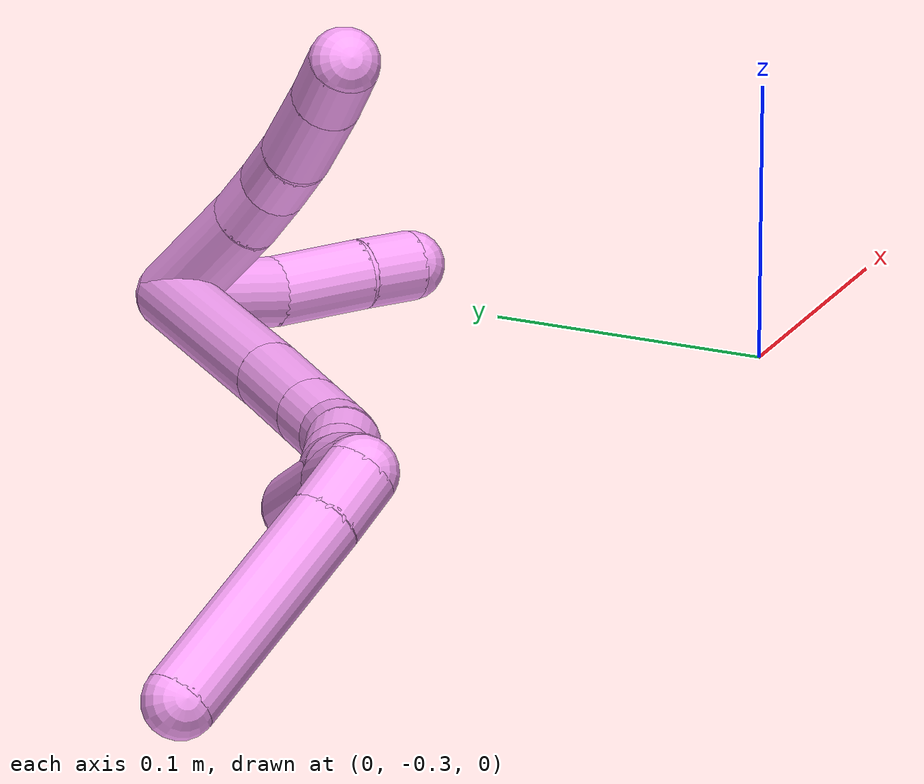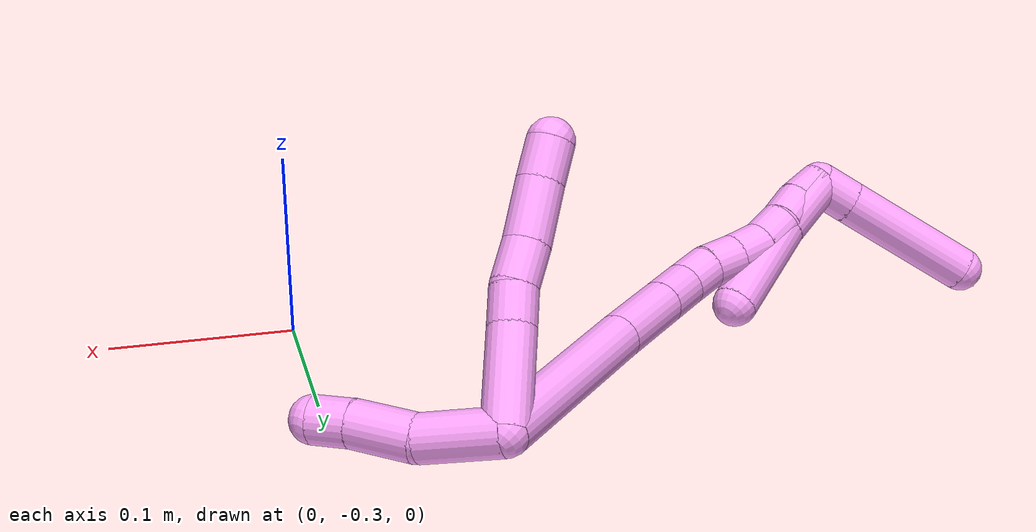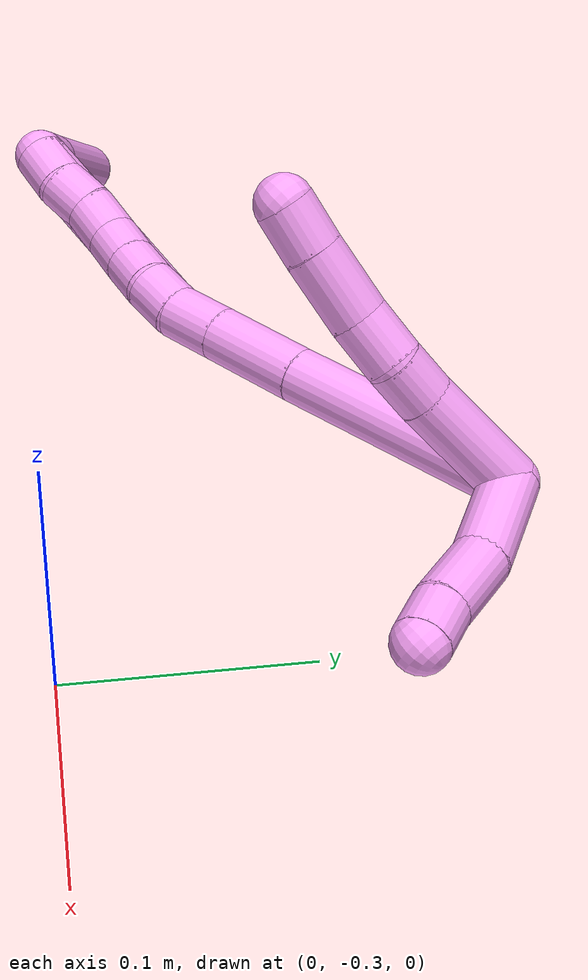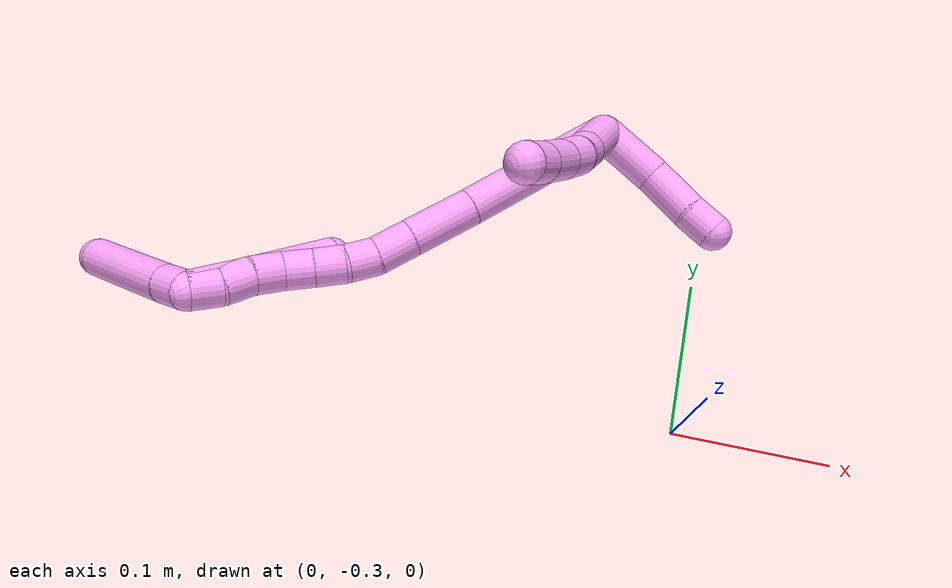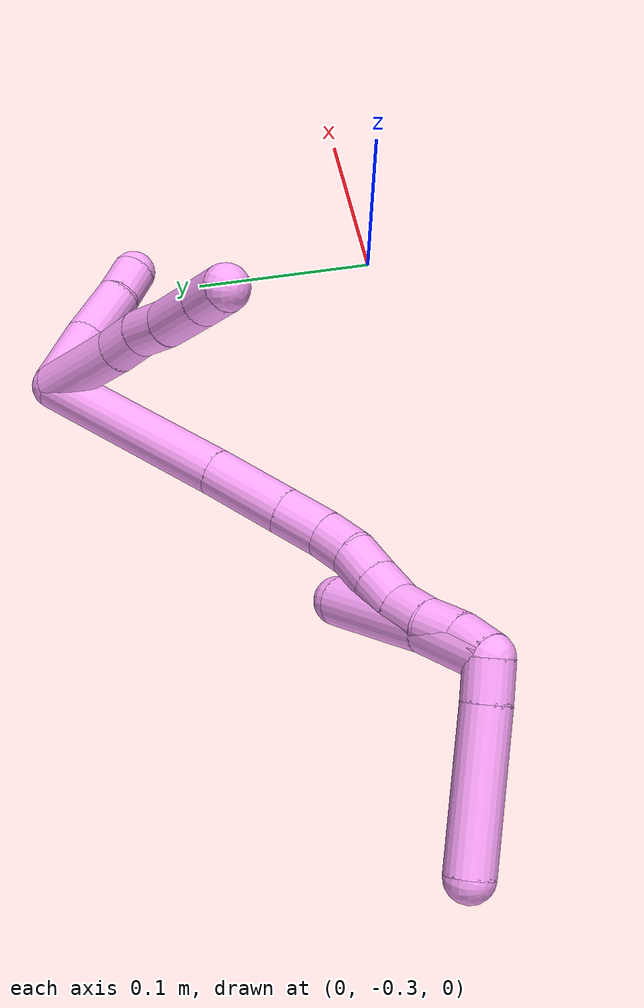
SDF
<sdf version="1.7">
 <world name="default">
  <model name="4">
   <static>0</static>
   <link name="4">
    <collision name="collision-cylinder-e_1_2_8">
     <pose>0.01262 0.005258 0.022239 -0.232156 0.504564 -0.060096</pose>
     <geometry><cylinder><radius>0.0125</radius><length>0.052211</length></cylinder></geometry>
     <surface>
      <friction><ode><mu>1.16</mu><mu2>1.16</mu2><slip1>0</slip1><slip2>0</slip2></ode></friction>
      <contact><ode><kp>1e+06</kp><kd>1</kd><max_vel>0</max_vel><min_depth>0.001</min_depth></ode></contact>
     </surface>
    </collision>
    <visual name="visual-cylinder-e_1_2_8">
     <pose>0.01262 0.005258 0.022239 -0.232156 0.504564 -0.060096</pose>
     <geometry><cylinder><radius>0.0125</radius><length>0.052211</length></cylinder></geometry>
     <material><ambient>1 0.65098 0.996078 1</ambient></material>
    </visual>
    <collision name="collision-cylinder-e_2_8_9">
     <pose>0.030234 0.013356 0.053101 -0.318191 0.502879 -0.082386</pose>
     <geometry><cylinder><radius>0.0125</radius><length>0.020722</length></cylinder></geometry>
     <surface>
      <friction><ode><mu>1.16</mu><mu2>1.16</mu2><slip1>0</slip1><slip2>0</slip2></ode></friction>
      <contact><ode><kp>1e+06</kp><kd>1</kd><max_vel>0</max_vel><min_depth>0.001</min_depth></ode></contact>
     </surface>
    </collision>
    <visual name="visual-cylinder-e_2_8_9">
     <pose>0.030234 0.013356 0.053101 -0.318191 0.502879 -0.082386</pose>
     <geometry><cylinder><radius>0.0125</radius><length>0.020722</length></cylinder></geometry>
     <material><ambient>1 0.65098 0.996078 1</ambient></material>
    </visual>
    <collision name="collision-cylinder-e_3_9_10">
     <pose>0.038485 0.018866 0.072357 -0.246051 0.288824 -0.03596</pose>
     <geometry><cylinder><radius>0.0125</radius><length>0.022874</length></cylinder></geometry>
     <surface>
      <friction><ode><mu>1.16</mu><mu2>1.16</mu2><slip1>0</slip1><slip2>0</slip2></ode></friction>
      <contact><ode><kp>1e+06</kp><kd>1</kd><max_vel>0</max_vel><min_depth>0.001</min_depth></ode></contact>
     </surface>
    </collision>
    <visual name="visual-cylinder-e_3_9_10">
     <pose>0.038485 0.018866 0.072357 -0.246051 0.288824 -0.03596</pose>
     <geometry><cylinder><radius>0.0125</radius><length>0.022874</length></cylinder></geometry>
     <material><ambient>1 0.65098 0.996078 1</ambient></material>
    </visual>
    <collision name="collision-cylinder-e_4_10_11">
     <pose>0.047042 0.026886 0.097269 -0.358417 0.334524 -0.061152</pose>
     <geometry><cylinder><radius>0.0125</radius><length>0.032287</length></cylinder></geometry>
     <surface>
      <friction><ode><mu>1.16</mu><mu2>1.16</mu2><slip1>0</slip1><slip2>0</slip2></ode></friction>
      <contact><ode><kp>1e+06</kp><kd>1</kd><max_vel>0</max_vel><min_depth>0.001</min_depth></ode></contact>
     </surface>
    </collision>
    <visual name="visual-cylinder-e_4_10_11">
     <pose>0.047042 0.026886 0.097269 -0.358417 0.334524 -0.061152</pose>
     <geometry><cylinder><radius>0.0125</radius><length>0.032287</length></cylinder></geometry>
     <material><ambient>1 0.65098 0.996078 1</ambient></material>
    </visual>
    <collision name="collision-cylinder-e_5_11_6">
     <pose>0.055543 0.036197 0.121246 -0.387872 0.29657 -0.058662</pose>
     <geometry><cylinder><radius>0.0125</radius><length>0.021907</length></cylinder></geometry>
     <surface>
      <friction><ode><mu>1.16</mu><mu2>1.16</mu2><slip1>0</slip1><slip2>0</slip2></ode></friction>
      <contact><ode><kp>1e+06</kp><kd>1</kd><max_vel>0</max_vel><min_depth>0.001</min_depth></ode></contact>
     </surface>
    </collision>
    <visual name="visual-cylinder-e_5_11_6">
     <pose>0.055543 0.036197 0.121246 -0.387872 0.29657 -0.058662</pose>
     <geometry><cylinder><radius>0.0125</radius><length>0.021907</length></cylinder></geometry>
     <material><ambient>1 0.65098 0.996078 1</ambient></material>
    </visual>
    <collision name="collision-cylinder-e_1_2_12">
     <pose>0.01848 -0.007752 -0.009183 2.44049 0.994224 1.95554</pose>
     <geometry><cylinder><radius>0.0125</radius><length>0.044088</length></cylinder></geometry>
     <surface>
      <friction><ode><mu>1.16</mu><mu2>1.16</mu2><slip1>0</slip1><slip2>0</slip2></ode></friction>
      <contact><ode><kp>1e+06</kp><kd>1</kd><max_vel>0</max_vel><min_depth>0.001</min_depth></ode></contact>
     </surface>
    </collision>
    <visual name="visual-cylinder-e_1_2_12">
     <pose>0.01848 -0.007752 -0.009183 2.44049 0.994224 1.95554</pose>
     <geometry><cylinder><radius>0.0125</radius><length>0.044088</length></cylinder></geometry>
     <material><ambient>1 0.65098 0.996078 1</ambient></material>
    </visual>
    <collision name="collision-cylinder-e_2_12_13">
     <pose>0.053629 -0.020103 -0.021391 2.15265 1.25184 1.85994</pose>
     <geometry><cylinder><radius>0.0125</radius><length>0.035108</length></cylinder></geometry>
     <surface>
      <friction><ode><mu>1.16</mu><mu2>1.16</mu2><slip1>0</slip1><slip2>0</slip2></ode></friction>
      <contact><ode><kp>1e+06</kp><kd>1</kd><max_vel>0</max_vel><min_depth>0.001</min_depth></ode></contact>
     </surface>
    </collision>
    <visual name="visual-cylinder-e_2_12_13">
     <pose>0.053629 -0.020103 -0.021391 2.15265 1.25184 1.85994</pose>
     <geometry><cylinder><radius>0.0125</radius><length>0.035108</length></cylinder></geometry>
     <material><ambient>1 0.65098 0.996078 1</ambient></material>
    </visual>
    <collision name="collision-cylinder-e_3_13_5">
     <pose>0.079839 -0.027442 -0.027523 2.41877 1.16115 2.09605</pose>
     <geometry><cylinder><radius>0.0125</radius><length>0.020804</length></cylinder></geometry>
     <surface>
      <friction><ode><mu>1.16</mu><mu2>1.16</mu2><slip1>0</slip1><slip2>0</slip2></ode></friction>
      <contact><ode><kp>1e+06</kp><kd>1</kd><max_vel>0</max_vel><min_depth>0.001</min_depth></ode></contact>
     </surface>
    </collision>
    <visual name="visual-cylinder-e_3_13_5">
     <pose>0.079839 -0.027442 -0.027523 2.41877 1.16115 2.09605</pose>
     <geometry><cylinder><radius>0.0125</radius><length>0.020804</length></cylinder></geometry>
     <material><ambient>1 0.65098 0.996078 1</ambient></material>
    </visual>
    <collision name="collision-cylinder-e_1_2_14">
     <pose>-0.003638 -0.02098 0.05018 0.396007 -0.066786 -0.013404</pose>
     <geometry><cylinder><radius>0.0125</radius><length>0.109022</length></cylinder></geometry>
     <surface>
      <friction><ode><mu>1.16</mu><mu2>1.16</mu2><slip1>0</slip1><slip2>0</slip2></ode></friction>
      <contact><ode><kp>1e+06</kp><kd>1</kd><max_vel>0</max_vel><min_depth>0.001</min_depth></ode></contact>
     </surface>
    </collision>
    <visual name="visual-cylinder-e_1_2_14">
     <pose>-0.003638 -0.02098 0.05018 0.396007 -0.066786 -0.013404</pose>
     <geometry><cylinder><radius>0.0125</radius><length>0.109022</length></cylinder></geometry>
     <material><ambient>1 0.65098 0.996078 1</ambient></material>
    </visual>
    <collision name="collision-cylinder-e_2_14_15">
     <pose>-0.0093 -0.050389 0.121054 0.386804 -0.09033 -0.017703</pose>
     <geometry><cylinder><radius>0.0125</radius><length>0.044872</length></cylinder></geometry>
     <surface>
      <friction><ode><mu>1.16</mu><mu2>1.16</mu2><slip1>0</slip1><slip2>0</slip2></ode></friction>
      <contact><ode><kp>1e+06</kp><kd>1</kd><max_vel>0</max_vel><min_depth>0.001</min_depth></ode></contact>
     </surface>
    </collision>
    <visual name="visual-cylinder-e_2_14_15">
     <pose>-0.0093 -0.050389 0.121054 0.386804 -0.09033 -0.017703</pose>
     <geometry><cylinder><radius>0.0125</radius><length>0.044872</length></cylinder></geometry>
     <material><ambient>1 0.65098 0.996078 1</ambient></material>
    </visual>
    <collision name="collision-cylinder-e_3_15_16">
     <pose>-0.012465 -0.063655 0.153564 0.388551 -0.08918 -0.017558</pose>
     <geometry><cylinder><radius>0.0125</radius><length>0.025637</length></cylinder></geometry>
     <surface>
      <friction><ode><mu>1.16</mu><mu2>1.16</mu2><slip1>0</slip1><slip2>0</slip2></ode></friction>
      <contact><ode><kp>1e+06</kp><kd>1</kd><max_vel>0</max_vel><min_depth>0.001</min_depth></ode></contact>
     </surface>
    </collision>
    <visual name="visual-cylinder-e_3_15_16">
     <pose>-0.012465 -0.063655 0.153564 0.388551 -0.08918 -0.017558</pose>
     <geometry><cylinder><radius>0.0125</radius><length>0.025637</length></cylinder></geometry>
     <material><ambient>1 0.65098 0.996078 1</ambient></material>
    </visual>
    <collision name="collision-cylinder-e_4_16_17">
     <pose>-0.015644 -0.070164 0.175201 0.168591 -0.201678 -0.017099</pose>
     <geometry><cylinder><radius>0.0125</radius><length>0.020337</length></cylinder></geometry>
     <surface>
      <friction><ode><mu>1.16</mu><mu2>1.16</mu2><slip1>0</slip1><slip2>0</slip2></ode></friction>
      <contact><ode><kp>1e+06</kp><kd>1</kd><max_vel>0</max_vel><min_depth>0.001</min_depth></ode></contact>
     </surface>
    </collision>
    <visual name="visual-cylinder-e_4_16_17">
     <pose>-0.015644 -0.070164 0.175201 0.168591 -0.201678 -0.017099</pose>
     <geometry><cylinder><radius>0.0125</radius><length>0.020337</length></cylinder></geometry>
     <material><ambient>1 0.65098 0.996078 1</ambient></material>
    </visual>
    <collision name="collision-cylinder-e_5_17_18">
     <pose>-0.021778 -0.073772 0.193941 0.213806 -0.421942 -0.045955</pose>
     <geometry><cylinder><radius>0.0125</radius><length>0.020008</length></cylinder></geometry>
     <surface>
      <friction><ode><mu>1.16</mu><mu2>1.16</mu2><slip1>0</slip1><slip2>0</slip2></ode></friction>
      <contact><ode><kp>1e+06</kp><kd>1</kd><max_vel>0</max_vel><min_depth>0.001</min_depth></ode></contact>
     </surface>
    </collision>
    <visual name="visual-cylinder-e_5_17_18">
     <pose>-0.021778 -0.073772 0.193941 0.213806 -0.421942 -0.045955</pose>
     <geometry><cylinder><radius>0.0125</radius><length>0.020008</length></cylinder></geometry>
     <material><ambient>1 0.65098 0.996078 1</ambient></material>
    </visual>
    <collision name="collision-cylinder-e_6_18_19">
     <pose>-0.029703 -0.077074 0.212013 0.148065 -0.392201 -0.029465</pose>
     <geometry><cylinder><radius>0.0125</radius><length>0.02003</length></cylinder></geometry>
     <surface>
      <friction><ode><mu>1.16</mu><mu2>1.16</mu2><slip1>0</slip1><slip2>0</slip2></ode></friction>
      <contact><ode><kp>1e+06</kp><kd>1</kd><max_vel>0</max_vel><min_depth>0.001</min_depth></ode></contact>
     </surface>
    </collision>
    <visual name="visual-cylinder-e_6_18_19">
     <pose>-0.029703 -0.077074 0.212013 0.148065 -0.392201 -0.029465</pose>
     <geometry><cylinder><radius>0.0125</radius><length>0.02003</length></cylinder></geometry>
     <material><ambient>1 0.65098 0.996078 1</ambient></material>
    </visual>
    <collision name="collision-cylinder-e_7_19_20">
     <pose>-0.035081 -0.078461 0.231071 0.002233 -0.15531 -0.000174</pose>
     <geometry><cylinder><radius>0.0125</radius><length>0.020051</length></cylinder></geometry>
     <surface>
      <friction><ode><mu>1.16</mu><mu2>1.16</mu2><slip1>0</slip1><slip2>0</slip2></ode></friction>
      <contact><ode><kp>1e+06</kp><kd>1</kd><max_vel>0</max_vel><min_depth>0.001</min_depth></ode></contact>
     </surface>
    </collision>
    <visual name="visual-cylinder-e_7_19_20">
     <pose>-0.035081 -0.078461 0.231071 0.002233 -0.15531 -0.000174</pose>
     <geometry><cylinder><radius>0.0125</radius><length>0.020051</length></cylinder></geometry>
     <material><ambient>1 0.65098 0.996078 1</ambient></material>
    </visual>
    <collision name="collision-cylinder-e_8_20_21">
     <pose>-0.036839 -0.079617 0.250913 0.113635 -0.020679 -0.001176</pose>
     <geometry><cylinder><radius>0.0125</radius><length>0.020007</length></cylinder></geometry>
     <surface>
      <friction><ode><mu>1.16</mu><mu2>1.16</mu2><slip1>0</slip1><slip2>0</slip2></ode></friction>
      <contact><ode><kp>1e+06</kp><kd>1</kd><max_vel>0</max_vel><min_depth>0.001</min_depth></ode></contact>
     </surface>
    </collision>
    <visual name="visual-cylinder-e_8_20_21">
     <pose>-0.036839 -0.079617 0.250913 0.113635 -0.020679 -0.001176</pose>
     <geometry><cylinder><radius>0.0125</radius><length>0.020007</length></cylinder></geometry>
     <material><ambient>1 0.65098 0.996078 1</ambient></material>
    </visual>
    <collision name="collision-cylinder-e_9_21_1">
     <pose>-0.039234 -0.081025 0.270622 0.027967 -0.220203 -0.003092</pose>
     <geometry><cylinder><radius>0.0125</radius><length>0.020036</length></cylinder></geometry>
     <surface>
      <friction><ode><mu>1.16</mu><mu2>1.16</mu2><slip1>0</slip1><slip2>0</slip2></ode></friction>
      <contact><ode><kp>1e+06</kp><kd>1</kd><max_vel>0</max_vel><min_depth>0.001</min_depth></ode></contact>
     </surface>
    </collision>
    <visual name="visual-cylinder-e_9_21_1">
     <pose>-0.039234 -0.081025 0.270622 0.027967 -0.220203 -0.003092</pose>
     <geometry><cylinder><radius>0.0125</radius><length>0.020036</length></cylinder></geometry>
     <material><ambient>1 0.65098 0.996078 1</ambient></material>
    </visual>
    <collision name="collision-cylinder-e_1_1_22">
     <pose>-0.040058 -0.081066 0.260017 -3.13017 0.066869 -2.80347</pose>
     <geometry><cylinder><radius>0.0125</radius><length>0.040847</length></cylinder></geometry>
     <surface>
      <friction><ode><mu>1.16</mu><mu2>1.16</mu2><slip1>0</slip1><slip2>0</slip2></ode></friction>
      <contact><ode><kp>1e+06</kp><kd>1</kd><max_vel>0</max_vel><min_depth>0.001</min_depth></ode></contact>
     </surface>
    </collision>
    <visual name="visual-cylinder-e_1_1_22">
     <pose>-0.040058 -0.081066 0.260017 -3.13017 0.066869 -2.80347</pose>
     <geometry><cylinder><radius>0.0125</radius><length>0.040847</length></cylinder></geometry>
     <material><ambient>1 0.65098 0.996078 1</ambient></material>
    </visual>
    <collision name="collision-cylinder-e_2_22_4">
     <pose>-0.039373 -0.082085 0.210099 3.09924 -0.023011 -0.99521</pose>
     <geometry><cylinder><radius>0.0125</radius><length>0.059153</length></cylinder></geometry>
     <surface>
      <friction><ode><mu>1.16</mu><mu2>1.16</mu2><slip1>0</slip1><slip2>0</slip2></ode></friction>
      <contact><ode><kp>1e+06</kp><kd>1</kd><max_vel>0</max_vel><min_depth>0.001</min_depth></ode></contact>
     </surface>
    </collision>
    <visual name="visual-cylinder-e_2_22_4">
     <pose>-0.039373 -0.082085 0.210099 3.09924 -0.023011 -0.99521</pose>
     <geometry><cylinder><radius>0.0125</radius><length>0.059153</length></cylinder></geometry>
     <material><ambient>1 0.65098 0.996078 1</ambient></material>
    </visual>
    <collision name="collision-cylinder-e_1_1_23">
     <pose>-0.050998 -0.085279 0.282582 1.06813 -1.12786 -0.715822</pose>
     <geometry><cylinder><radius>0.0125</radius><length>0.021197</length></cylinder></geometry>
     <surface>
      <friction><ode><mu>1.16</mu><mu2>1.16</mu2><slip1>0</slip1><slip2>0</slip2></ode></friction>
      <contact><ode><kp>1e+06</kp><kd>1</kd><max_vel>0</max_vel><min_depth>0.001</min_depth></ode></contact>
     </surface>
    </collision>
    <visual name="visual-cylinder-e_1_1_23">
     <pose>-0.050998 -0.085279 0.282582 1.06813 -1.12786 -0.715822</pose>
     <geometry><cylinder><radius>0.0125</radius><length>0.021197</length></cylinder></geometry>
     <material><ambient>1 0.65098 0.996078 1</ambient></material>
    </visual>
    <collision name="collision-cylinder-e_2_23_3">
     <pose>-0.096682 -0.103138 0.292254 1.07628 -1.15907 -0.74488</pose>
     <geometry><cylinder><radius>0.0125</radius><length>0.078803</length></cylinder></geometry>
     <surface>
      <friction><ode><mu>1.16</mu><mu2>1.16</mu2><slip1>0</slip1><slip2>0</slip2></ode></friction>
      <contact><ode><kp>1e+06</kp><kd>1</kd><max_vel>0</max_vel><min_depth>0.001</min_depth></ode></contact>
     </surface>
    </collision>
    <visual name="visual-cylinder-e_2_23_3">
     <pose>-0.096682 -0.103138 0.292254 1.07628 -1.15907 -0.74488</pose>
     <geometry><cylinder><radius>0.0125</radius><length>0.078803</length></cylinder></geometry>
     <material><ambient>1 0.65098 0.996078 1</ambient></material>
    </visual>
    <collision name="collision-sphere-3">
     <pose>-0.132791 -0.117018 0.299738 0 -0 0</pose>
     <geometry><sphere><radius>0.0125</radius></sphere></geometry>
     <surface>
      <friction><ode><mu>1.16</mu><mu2>1.16</mu2><slip1>0</slip1><slip2>0</slip2></ode></friction>
      <contact><ode><kp>1e+06</kp><kd>1</kd><max_vel>0</max_vel><min_depth>0.001</min_depth></ode></contact>
     </surface>
    </collision>
    <visual name="visual-sphere-3">
     <pose>-0.132791 -0.117018 0.299738 0 -0 0</pose>
     <geometry><sphere><radius>0.0125</radius></sphere></geometry>
     <material><ambient>1 0.65098 0.996078 1</ambient></material>
    </visual>
    <collision name="collision-sphere-23">
     <pose>-0.060574 -0.089259 0.284771 0 -0 0</pose>
     <geometry><sphere><radius>0.0125</radius></sphere></geometry>
     <surface>
      <friction><ode><mu>1.16</mu><mu2>1.16</mu2><slip1>0</slip1><slip2>0</slip2></ode></friction>
      <contact><ode><kp>1e+06</kp><kd>1</kd><max_vel>0</max_vel><min_depth>0.001</min_depth></ode></contact>
     </surface>
    </collision>
    <visual name="visual-sphere-23">
     <pose>-0.060574 -0.089259 0.284771 0 -0 0</pose>
     <geometry><sphere><radius>0.0125</radius></sphere></geometry>
     <material><ambient>1 0.65098 0.996078 1</ambient></material>
    </visual>
    <collision name="collision-sphere-4">
     <pose>-0.040054 -0.083337 0.180556 0 -0 0</pose>
     <geometry><sphere><radius>0.0125</radius></sphere></geometry>
     <surface>
      <friction><ode><mu>1.16</mu><mu2>1.16</mu2><slip1>0</slip1><slip2>0</slip2></ode></friction>
      <contact><ode><kp>1e+06</kp><kd>1</kd><max_vel>0</max_vel><min_depth>0.001</min_depth></ode></contact>
     </surface>
    </collision>
    <visual name="visual-sphere-4">
     <pose>-0.040054 -0.083337 0.180556 0 -0 0</pose>
     <geometry><sphere><radius>0.0125</radius></sphere></geometry>
     <material><ambient>1 0.65098 0.996078 1</ambient></material>
    </visual>
    <collision name="collision-sphere-22">
     <pose>-0.038693 -0.080833 0.239641 0 -0 0</pose>
     <geometry><sphere><radius>0.0125</radius></sphere></geometry>
     <surface>
      <friction><ode><mu>1.16</mu><mu2>1.16</mu2><slip1>0</slip1><slip2>0</slip2></ode></friction>
      <contact><ode><kp>1e+06</kp><kd>1</kd><max_vel>0</max_vel><min_depth>0.001</min_depth></ode></contact>
     </surface>
    </collision>
    <visual name="visual-sphere-22">
     <pose>-0.038693 -0.080833 0.239641 0 -0 0</pose>
     <geometry><sphere><radius>0.0125</radius></sphere></geometry>
     <material><ambient>1 0.65098 0.996078 1</ambient></material>
    </visual>
    <collision name="collision-sphere-1">
     <pose>-0.041422 -0.081298 0.280394 0 -0 0</pose>
     <geometry><sphere><radius>0.0125</radius></sphere></geometry>
     <surface>
      <friction><ode><mu>1.16</mu><mu2>1.16</mu2><slip1>0</slip1><slip2>0</slip2></ode></friction>
      <contact><ode><kp>1e+06</kp><kd>1</kd><max_vel>0</max_vel><min_depth>0.001</min_depth></ode></contact>
     </surface>
    </collision>
    <visual name="visual-sphere-1">
     <pose>-0.041422 -0.081298 0.280394 0 -0 0</pose>
     <geometry><sphere><radius>0.0125</radius></sphere></geometry>
     <material><ambient>1 0.65098 0.996078 1</ambient></material>
    </visual>
    <collision name="collision-sphere-21">
     <pose>-0.037046 -0.080751 0.26085 0 -0 0</pose>
     <geometry><sphere><radius>0.0125</radius></sphere></geometry>
     <surface>
      <friction><ode><mu>1.16</mu><mu2>1.16</mu2><slip1>0</slip1><slip2>0</slip2></ode></friction>
      <contact><ode><kp>1e+06</kp><kd>1</kd><max_vel>0</max_vel><min_depth>0.001</min_depth></ode></contact>
     </surface>
    </collision>
    <visual name="visual-sphere-21">
     <pose>-0.037046 -0.080751 0.26085 0 -0 0</pose>
     <geometry><sphere><radius>0.0125</radius></sphere></geometry>
     <material><ambient>1 0.65098 0.996078 1</ambient></material>
    </visual>
    <collision name="collision-sphere-6">
     <pose>0.058745 0.040158 0.130943 0 -0 0</pose>
     <geometry><sphere><radius>0.0125</radius></sphere></geometry>
     <surface>
      <friction><ode><mu>1.16</mu><mu2>1.16</mu2><slip1>0</slip1><slip2>0</slip2></ode></friction>
      <contact><ode><kp>1e+06</kp><kd>1</kd><max_vel>0</max_vel><min_depth>0.001</min_depth></ode></contact>
     </surface>
    </collision>
    <visual name="visual-sphere-6">
     <pose>0.058745 0.040158 0.130943 0 -0 0</pose>
     <geometry><sphere><radius>0.0125</radius></sphere></geometry>
     <material><ambient>1 0.65098 0.996078 1</ambient></material>
    </visual>
    <collision name="collision-sphere-11">
     <pose>0.052342 0.032235 0.111549 0 -0 0</pose>
     <geometry><sphere><radius>0.0125</radius></sphere></geometry>
     <surface>
      <friction><ode><mu>1.16</mu><mu2>1.16</mu2><slip1>0</slip1><slip2>0</slip2></ode></friction>
      <contact><ode><kp>1e+06</kp><kd>1</kd><max_vel>0</max_vel><min_depth>0.001</min_depth></ode></contact>
     </surface>
    </collision>
    <visual name="visual-sphere-11">
     <pose>0.052342 0.032235 0.111549 0 -0 0</pose>
     <geometry><sphere><radius>0.0125</radius></sphere></geometry>
     <material><ambient>1 0.65098 0.996078 1</ambient></material>
    </visual>
    <collision name="collision-sphere-10">
     <pose>0.041742 0.021537 0.08299 0 -0 0</pose>
     <geometry><sphere><radius>0.0125</radius></sphere></geometry>
     <surface>
      <friction><ode><mu>1.16</mu><mu2>1.16</mu2><slip1>0</slip1><slip2>0</slip2></ode></friction>
      <contact><ode><kp>1e+06</kp><kd>1</kd><max_vel>0</max_vel><min_depth>0.001</min_depth></ode></contact>
     </surface>
    </collision>
    <visual name="visual-sphere-10">
     <pose>0.041742 0.021537 0.08299 0 -0 0</pose>
     <geometry><sphere><radius>0.0125</radius></sphere></geometry>
     <material><ambient>1 0.65098 0.996078 1</ambient></material>
    </visual>
    <collision name="collision-sphere-9">
     <pose>0.035227 0.016196 0.061724 0 -0 0</pose>
     <geometry><sphere><radius>0.0125</radius></sphere></geometry>
     <surface>
      <friction><ode><mu>1.16</mu><mu2>1.16</mu2><slip1>0</slip1><slip2>0</slip2></ode></friction>
      <contact><ode><kp>1e+06</kp><kd>1</kd><max_vel>0</max_vel><min_depth>0.001</min_depth></ode></contact>
     </surface>
    </collision>
    <visual name="visual-sphere-9">
     <pose>0.035227 0.016196 0.061724 0 -0 0</pose>
     <geometry><sphere><radius>0.0125</radius></sphere></geometry>
     <material><ambient>1 0.65098 0.996078 1</ambient></material>
    </visual>
    <collision name="collision-sphere-2">
     <geometry><sphere><radius>0.0125</radius></sphere></geometry>
     <surface>
      <friction><ode><mu>1.16</mu><mu2>1.16</mu2><slip1>0</slip1><slip2>0</slip2></ode></friction>
      <contact><ode><kp>1e+06</kp><kd>1</kd><max_vel>0</max_vel><min_depth>0.001</min_depth></ode></contact>
     </surface>
    </collision>
    <visual name="visual-sphere-2">
     <geometry><sphere><radius>0.0125</radius></sphere></geometry>
     <material><ambient>1 0.65098 0.996078 1</ambient></material>
    </visual>
    <collision name="collision-sphere-19">
     <pose>-0.033531 -0.078439 0.221167 0 -0 0</pose>
     <geometry><sphere><radius>0.0125</radius></sphere></geometry>
     <surface>
      <friction><ode><mu>1.16</mu><mu2>1.16</mu2><slip1>0</slip1><slip2>0</slip2></ode></friction>
      <contact><ode><kp>1e+06</kp><kd>1</kd><max_vel>0</max_vel><min_depth>0.001</min_depth></ode></contact>
     </surface>
    </collision>
    <visual name="visual-sphere-19">
     <pose>-0.033531 -0.078439 0.221167 0 -0 0</pose>
     <geometry><sphere><radius>0.0125</radius></sphere></geometry>
     <material><ambient>1 0.65098 0.996078 1</ambient></material>
    </visual>
    <collision name="collision-sphere-8">
     <pose>0.02524 0.010516 0.044478 0 -0 0</pose>
     <geometry><sphere><radius>0.0125</radius></sphere></geometry>
     <surface>
      <friction><ode><mu>1.16</mu><mu2>1.16</mu2><slip1>0</slip1><slip2>0</slip2></ode></friction>
      <contact><ode><kp>1e+06</kp><kd>1</kd><max_vel>0</max_vel><min_depth>0.001</min_depth></ode></contact>
     </surface>
    </collision>
    <visual name="visual-sphere-8">
     <pose>0.02524 0.010516 0.044478 0 -0 0</pose>
     <geometry><sphere><radius>0.0125</radius></sphere></geometry>
     <material><ambient>1 0.65098 0.996078 1</ambient></material>
    </visual>
    <collision name="collision-sphere-12">
     <pose>0.03696 -0.015504 -0.018365 0 -0 0</pose>
     <geometry><sphere><radius>0.0125</radius></sphere></geometry>
     <surface>
      <friction><ode><mu>1.16</mu><mu2>1.16</mu2><slip1>0</slip1><slip2>0</slip2></ode></friction>
      <contact><ode><kp>1e+06</kp><kd>1</kd><max_vel>0</max_vel><min_depth>0.001</min_depth></ode></contact>
     </surface>
    </collision>
    <visual name="visual-sphere-12">
     <pose>0.03696 -0.015504 -0.018365 0 -0 0</pose>
     <geometry><sphere><radius>0.0125</radius></sphere></geometry>
     <material><ambient>1 0.65098 0.996078 1</ambient></material>
    </visual>
    <collision name="collision-sphere-13">
     <pose>0.070298 -0.024701 -0.024416 0 -0 0</pose>
     <geometry><sphere><radius>0.0125</radius></sphere></geometry>
     <surface>
      <friction><ode><mu>1.16</mu><mu2>1.16</mu2><slip1>0</slip1><slip2>0</slip2></ode></friction>
      <contact><ode><kp>1e+06</kp><kd>1</kd><max_vel>0</max_vel><min_depth>0.001</min_depth></ode></contact>
     </surface>
    </collision>
    <visual name="visual-sphere-13">
     <pose>0.070298 -0.024701 -0.024416 0 -0 0</pose>
     <geometry><sphere><radius>0.0125</radius></sphere></geometry>
     <material><ambient>1 0.65098 0.996078 1</ambient></material>
    </visual>
    <collision name="collision-sphere-5">
     <pose>0.089381 -0.030183 -0.03063 0 -0 0</pose>
     <geometry><sphere><radius>0.0125</radius></sphere></geometry>
     <surface>
      <friction><ode><mu>1.16</mu><mu2>1.16</mu2><slip1>0</slip1><slip2>0</slip2></ode></friction>
      <contact><ode><kp>1e+06</kp><kd>1</kd><max_vel>0</max_vel><min_depth>0.001</min_depth></ode></contact>
     </surface>
    </collision>
    <visual name="visual-sphere-5">
     <pose>0.089381 -0.030183 -0.03063 0 -0 0</pose>
     <geometry><sphere><radius>0.0125</radius></sphere></geometry>
     <material><ambient>1 0.65098 0.996078 1</ambient></material>
    </visual>
    <collision name="collision-sphere-14">
     <pose>-0.007276 -0.04196 0.10036 0 -0 0</pose>
     <geometry><sphere><radius>0.0125</radius></sphere></geometry>
     <surface>
      <friction><ode><mu>1.16</mu><mu2>1.16</mu2><slip1>0</slip1><slip2>0</slip2></ode></friction>
      <contact><ode><kp>1e+06</kp><kd>1</kd><max_vel>0</max_vel><min_depth>0.001</min_depth></ode></contact>
     </surface>
    </collision>
    <visual name="visual-sphere-14">
     <pose>-0.007276 -0.04196 0.10036 0 -0 0</pose>
     <geometry><sphere><radius>0.0125</radius></sphere></geometry>
     <material><ambient>1 0.65098 0.996078 1</ambient></material>
    </visual>
    <collision name="collision-sphere-15">
     <pose>-0.011324 -0.058818 0.141748 0 -0 0</pose>
     <geometry><sphere><radius>0.0125</radius></sphere></geometry>
     <surface>
      <friction><ode><mu>1.16</mu><mu2>1.16</mu2><slip1>0</slip1><slip2>0</slip2></ode></friction>
      <contact><ode><kp>1e+06</kp><kd>1</kd><max_vel>0</max_vel><min_depth>0.001</min_depth></ode></contact>
     </surface>
    </collision>
    <visual name="visual-sphere-15">
     <pose>-0.011324 -0.058818 0.141748 0 -0 0</pose>
     <geometry><sphere><radius>0.0125</radius></sphere></geometry>
     <material><ambient>1 0.65098 0.996078 1</ambient></material>
    </visual>
    <collision name="collision-sphere-16">
     <pose>-0.013607 -0.068492 0.16538 0 -0 0</pose>
     <geometry><sphere><radius>0.0125</radius></sphere></geometry>
     <surface>
      <friction><ode><mu>1.16</mu><mu2>1.16</mu2><slip1>0</slip1><slip2>0</slip2></ode></friction>
      <contact><ode><kp>1e+06</kp><kd>1</kd><max_vel>0</max_vel><min_depth>0.001</min_depth></ode></contact>
     </surface>
    </collision>
    <visual name="visual-sphere-16">
     <pose>-0.013607 -0.068492 0.16538 0 -0 0</pose>
     <geometry><sphere><radius>0.0125</radius></sphere></geometry>
     <material><ambient>1 0.65098 0.996078 1</ambient></material>
    </visual>
    <collision name="collision-sphere-17">
     <pose>-0.017681 -0.071836 0.185022 0 -0 0</pose>
     <geometry><sphere><radius>0.0125</radius></sphere></geometry>
     <surface>
      <friction><ode><mu>1.16</mu><mu2>1.16</mu2><slip1>0</slip1><slip2>0</slip2></ode></friction>
      <contact><ode><kp>1e+06</kp><kd>1</kd><max_vel>0</max_vel><min_depth>0.001</min_depth></ode></contact>
     </surface>
    </collision>
    <visual name="visual-sphere-17">
     <pose>-0.017681 -0.071836 0.185022 0 -0 0</pose>
     <geometry><sphere><radius>0.0125</radius></sphere></geometry>
     <material><ambient>1 0.65098 0.996078 1</ambient></material>
    </visual>
    <collision name="collision-sphere-18">
     <pose>-0.025875 -0.075709 0.20286 0 -0 0</pose>
     <geometry><sphere><radius>0.0125</radius></sphere></geometry>
     <surface>
      <friction><ode><mu>1.16</mu><mu2>1.16</mu2><slip1>0</slip1><slip2>0</slip2></ode></friction>
      <contact><ode><kp>1e+06</kp><kd>1</kd><max_vel>0</max_vel><min_depth>0.001</min_depth></ode></contact>
     </surface>
    </collision>
    <visual name="visual-sphere-18">
     <pose>-0.025875 -0.075709 0.20286 0 -0 0</pose>
     <geometry><sphere><radius>0.0125</radius></sphere></geometry>
     <material><ambient>1 0.65098 0.996078 1</ambient></material>
    </visual>
    <collision name="collision-sphere-20">
     <pose>-0.036632 -0.078483 0.240976 0 -0 0</pose>
     <geometry><sphere><radius>0.0125</radius></sphere></geometry>
     <surface>
      <friction><ode><mu>1.16</mu><mu2>1.16</mu2><slip1>0</slip1><slip2>0</slip2></ode></friction>
      <contact><ode><kp>1e+06</kp><kd>1</kd><max_vel>0</max_vel><min_depth>0.001</min_depth></ode></contact>
     </surface>
    </collision>
    <visual name="visual-sphere-20">
     <pose>-0.036632 -0.078483 0.240976 0 -0 0</pose>
     <geometry><sphere><radius>0.0125</radius></sphere></geometry>
     <material><ambient>1 0.65098 0.996078 1</ambient></material>
    </visual>
    <inertial>
     <pose>-0.010819 -0.043324 0.135545 0 -0 0</pose>
     <mass>0.75</mass>
     <inertia>
      <ixx>0.000141</ixx>
      <ixy>0</ixy>
      <ixz>0</ixz>
      <iyy>0.000159</iyy>
      <iyz>0</iyz>
      <izz>0.000117</izz>
     </inertia>
    </inertial>
   </link>
   <pose>-0.075859 -0.108968 0.020011 1.07886 -0.343715 -0.702051</pose>
  </model>
 </world>
</sdf>
